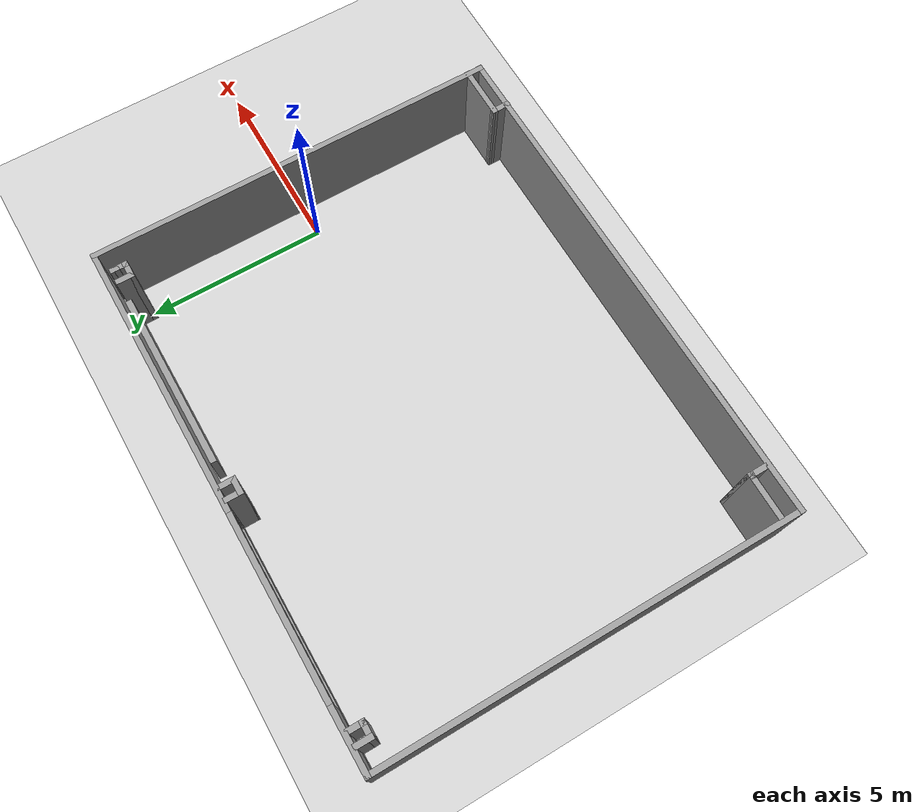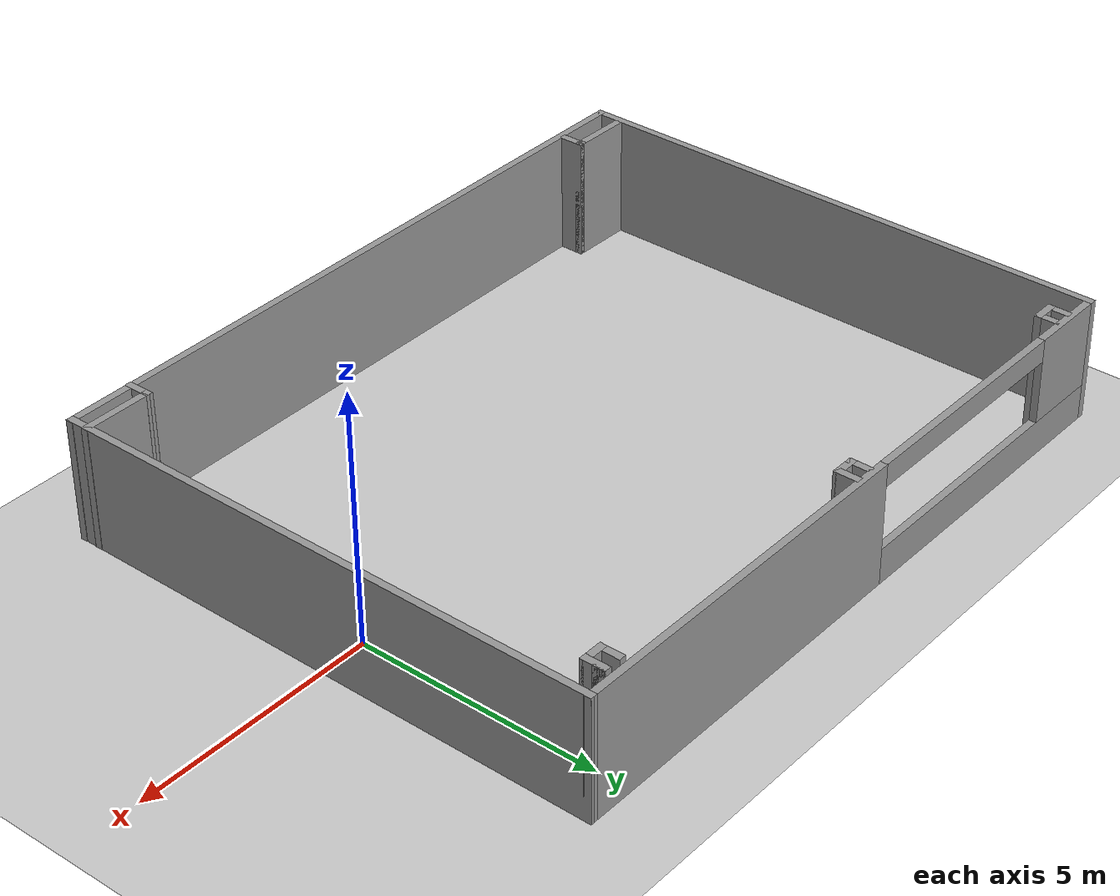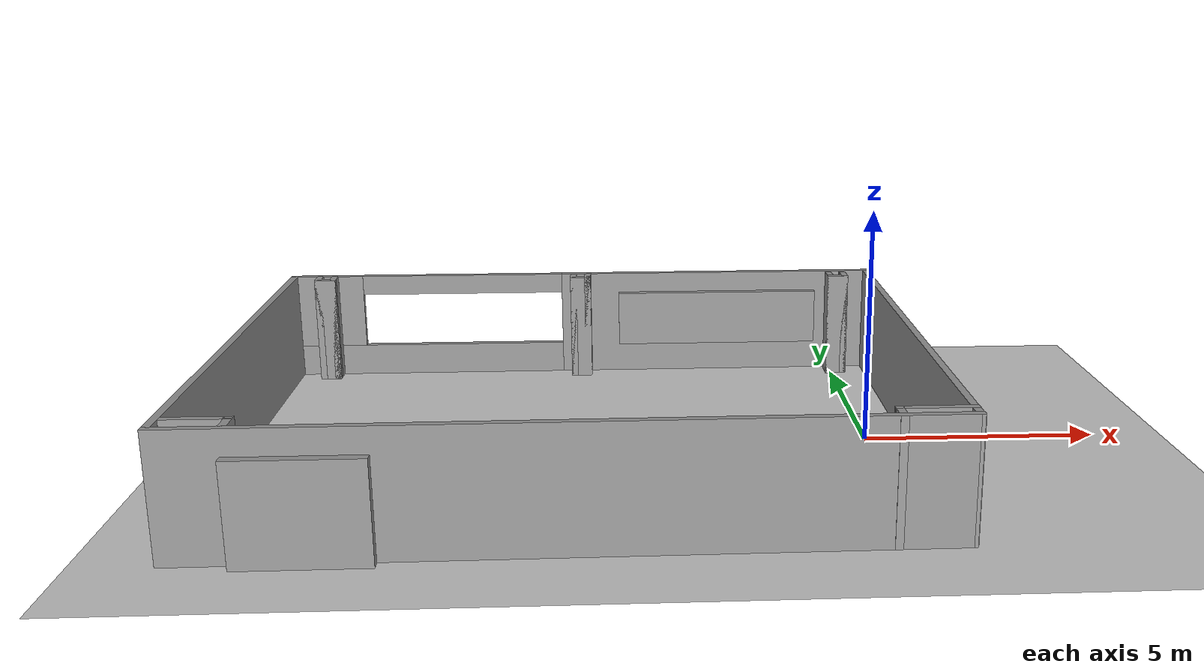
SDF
<sdf version="1.7">
 <world name="default">
  <light name="sun" type="directional">
   <pose>0 0 10 0 -0 0</pose>
   <diffuse>0.8 0.8 0.8 1</diffuse>
   <specular>0.2 0.2 0.2 1</specular>
   <attenuation>
    <range>1000</range>
    <constant>0.9</constant>
    <linear>0.01</linear>
    <quadratic>0.001</quadratic>
   </attenuation>
   <direction>-0.5 0.1 -0.9</direction>
   <spot><inner_angle>0</inner_angle><outer_angle>0</outer_angle><falloff>0</falloff></spot>
  </light>
  <model name="ground_plane">
   <static>1</static>
   <link name="link">
    <collision name="collision">
     <geometry><plane><normal>0 0 1</normal><size>100 100</size></plane></geometry>
     <surface>
      <contact><collide_bitmask>65535</collide_bitmask></contact>
      <friction><ode><mu>100</mu><mu2>50</mu2></ode></friction>
     </surface>
    </collision>
    <visual name="visual">
     <cast_shadows>0</cast_shadows>
     <geometry><plane><normal>0 0 1</normal><size>100 100</size></plane></geometry>
     <material>
      <script><uri>file://media/materials/scripts/gazebo.material</uri><name>Gazebo/Grey</name></script>
     </material>
    </visual>
   </link>
  </model>
  <gravity>0 0 -9.8</gravity>
  <magnetic_field>6e-06 2.3e-05 -4.2e-05</magnetic_field>
  <atmosphere type="adiabatic"/>
  <physics type="ode">
   <max_step_size>0.001</max_step_size>
   <real_time_factor>1</real_time_factor>
   <real_time_update_rate>1000</real_time_update_rate>
  </physics>
  <scene><ambient>0.4 0.4 0.4 1</ambient><background>0.7 0.7 0.7 1</background><shadows>1</shadows></scene>
  <spherical_coordinates>
   <surface_model>EARTH_WGS84</surface_model>
   <latitude_deg>0</latitude_deg>
   <longitude_deg>0</longitude_deg>
   <elevation>0</elevation>
   <heading_deg>0</heading_deg>
  </spherical_coordinates>
  <model name="escenario">
   <pose>-6.18412 -0.080231 0 0 -0 0</pose>
   <link name="Door_0">
    <collision name="Door_0_Collision">
     <geometry><box><size>2.5 0.2 2</size></box></geometry>
     <pose>0 0 1 0 -0 0</pose>
    </collision>
    <visual name="Door_0_Visual">
     <pose>0 0 1 0 -0 0</pose>
     <geometry><box><size>2.5 0.2 2</size></box></geometry>
     <material>
      <script><uri>file://media/materials/scripts/gazebo.material</uri><name>Gazebo/Grey</name></script>
     </material>
    </visual>
    <pose>-4.63318 -5.88632 0 0 -0 0</pose>
   </link>
   <link name="Wall_1">
    <collision name="Wall_1_Collision">
     <geometry><box><size>14.34 0.15 2.5</size></box></geometry>
     <pose>0 0 1.25 0 -0 0</pose>
    </collision>
    <visual name="Wall_1_Visual">
     <pose>0 0 1.25 0 -0 0</pose>
     <geometry><box><size>14.34 0.15 2.5</size></box></geometry>
     <material>
      <script><uri>file://media/materials/scripts/gazebo.material</uri><name>Gazebo/Grey</name></script>
      <ambient>1 1 1 1</ambient>
     </material>
     <meta><layer>0</layer></meta>
    </visual>
    <pose>0.000631 -5.66507 0 0 -0 0.00424</pose>
   </link>
   <link name="Wall_10">
    <collision name="Wall_10_Collision">
     <geometry><box><size>0.171 0.15 2.5</size></box></geometry>
     <pose>0 0 1.25 0 -0 0</pose>
    </collision>
    <visual name="Wall_10_Visual">
     <pose>0 0 1.25 0 -0 0</pose>
     <geometry><box><size>0.171 0.15 2.5</size></box></geometry>
     <material>
      <script><uri>file://media/materials/scripts/gazebo.material</uri><name>Gazebo/Grey</name></script>
      <ambient>1 1 1 1</ambient>
     </material>
     <meta><layer>0</layer></meta>
    </visual>
    <pose>-5.84438 -5.18777 0 0 -0 0</pose>
   </link>
   <link name="Wall_11">
    <collision name="Wall_11_Collision">
     <geometry><box><size>0.15 0.15 2.5</size></box></geometry>
     <pose>0 0 1.25 0 -0 0</pose>
    </collision>
    <visual name="Wall_11_Visual">
     <pose>0 0 1.25 0 -0 0</pose>
     <geometry><box><size>0.15 0.15 2.5</size></box></geometry>
     <material>
      <script><uri>file://media/materials/scripts/gazebo.material</uri><name>Gazebo/Grey</name></script>
      <ambient>1 1 1 1</ambient>
     </material>
     <meta><layer>0</layer></meta>
    </visual>
    <pose>-5.83388 -5.18777 0 0 -0 0</pose>
   </link>
   <link name="Wall_13">
    <collision name="Wall_13_Collision">
     <geometry><box><size>0.54 0.15 2.5</size></box></geometry>
     <pose>0 0 1.25 0 -0 0</pose>
    </collision>
    <visual name="Wall_13_Visual">
     <pose>0 0 1.25 0 -0 0</pose>
     <geometry><box><size>0.54 0.15 2.5</size></box></geometry>
     <material>
      <script><uri>file://media/materials/scripts/gazebo.material</uri><name>Gazebo/Grey</name></script>
      <ambient>1 1 1 1</ambient>
     </material>
     <meta><layer>0</layer></meta>
    </visual>
    <pose>-5.83388 -5.38277 0 0 -0 -1.5708</pose>
   </link>
   <link name="Wall_16">
    <collision name="Wall_16_Collision">
     <geometry><box><size>1.5 0.15 2.5</size></box></geometry>
     <pose>0 0 1.25 0 -0 0</pose>
    </collision>
    <visual name="Wall_16_Visual">
     <pose>0 0 1.25 0 -0 0</pose>
     <geometry><box><size>1.5 0.15 2.5</size></box></geometry>
     <material>
      <script><uri>file://media/materials/scripts/gazebo.material</uri><name>Gazebo/Grey</name></script>
      <ambient>1 1 1 1</ambient>
     </material>
     <meta><layer>0</layer></meta>
    </visual>
    <pose>6.41761 -5.2619 0 0 -0 3.14159</pose>
   </link>
   <link name="Wall_18">
    <collision name="Wall_18_Collision">
     <geometry><box><size>0.54 0.15 2.5</size></box></geometry>
     <pose>0 0 1.25 0 -0 0</pose>
    </collision>
    <visual name="Wall_18_Visual">
     <pose>0 0 1.25 0 -0 0</pose>
     <geometry><box><size>0.54 0.15 2.5</size></box></geometry>
     <material>
      <script><uri>file://media/materials/scripts/gazebo.material</uri><name>Gazebo/Grey</name></script>
      <ambient>1 1 1 1</ambient>
     </material>
     <meta><layer>0</layer></meta>
    </visual>
    <pose>5.74427 -5.45689 0 0 -0 1.57928</pose>
   </link>
   <link name="Wall_2">
    <collision name="Wall_2_Collision">
     <geometry><box><size>11.4804 0.15 2.5</size></box></geometry>
     <pose>0 0 1.25 0 -0 0</pose>
    </collision>
    <visual name="Wall_2_Visual">
     <pose>0 0 1.25 0 -0 0</pose>
     <geometry><box><size>11.4804 0.15 2.5</size></box></geometry>
     <material>
      <script><uri>file://media/materials/scripts/gazebo.material</uri><name>Gazebo/Grey</name></script>
      <ambient>1 1 1 1</ambient>
     </material>
     <meta><layer>0</layer></meta>
    </visual>
    <pose>7.08999 0.030204 0 0 -0 1.57005</pose>
   </link>
   <link name="Wall_20">
    <collision name="Wall_20_Collision">
     <geometry><box><size>0.25 0.15 2.5</size></box></geometry>
     <pose>0 0 1.25 0 -0 0</pose>
    </collision>
    <visual name="Wall_20_Visual">
     <pose>0 0 1.25 0 -0 0</pose>
     <geometry><box><size>0.25 0.15 2.5</size></box></geometry>
     <material>
      <script><uri>file://media/materials/scripts/gazebo.material</uri><name>Gazebo/Grey</name></script>
      <ambient>1 1 1 1</ambient>
     </material>
     <meta><layer>0</layer></meta>
    </visual>
    <pose>6.48028 5.40621 0 0 -0 -1.5708</pose>
   </link>
   <link name="Wall_22">
    <collision name="Wall_22_Collision">
     <geometry><box><size>0.15 0.15 2.5</size></box></geometry>
     <pose>0 0 1.25 0 -0 0</pose>
    </collision>
    <visual name="Wall_22_Visual">
     <pose>0 0 1.25 0 -0 0</pose>
     <geometry><box><size>0.15 0.15 2.5</size></box></geometry>
     <material>
      <script><uri>file://media/materials/scripts/gazebo.material</uri><name>Gazebo/Grey</name></script>
      <ambient>1 1 1 1</ambient>
     </material>
     <meta><layer>0</layer></meta>
    </visual>
    <pose>6.48028 5.45621 0 0 -0 0</pose>
   </link>
   <link name="Wall_24">
    <collision name="Wall_24_Collision">
     <geometry><box><size>0.5 0.15 2.5</size></box></geometry>
     <pose>0 0 1.25 0 -0 0</pose>
    </collision>
    <visual name="Wall_24_Visual">
     <pose>0 0 1.25 0 -0 0</pose>
     <geometry><box><size>0.5 0.15 2.5</size></box></geometry>
     <material>
      <script><uri>file://media/materials/scripts/gazebo.material</uri><name>Gazebo/Grey</name></script>
      <ambient>1 1 1 1</ambient>
     </material>
     <meta><layer>0</layer></meta>
    </visual>
    <pose>6.48028 5.28121 0 0 -0 -1.5708</pose>
   </link>
   <link name="Wall_25">
    <collision name="Wall_25_Collision">
     <geometry><box><size>0.5 0.15 2.5</size></box></geometry>
     <pose>0 0 1.25 0 -0 0</pose>
    </collision>
    <visual name="Wall_25_Visual">
     <pose>0 0 1.25 0 -0 0</pose>
     <geometry><box><size>0.5 0.15 2.5</size></box></geometry>
     <material>
      <script><uri>file://media/materials/scripts/gazebo.material</uri><name>Gazebo/Grey</name></script>
      <ambient>1 1 1 1</ambient>
     </material>
     <meta><layer>0</layer></meta>
    </visual>
    <pose>6.30528 5.10621 0 0 -0 3.14159</pose>
   </link>
   <link name="Wall_26">
    <collision name="Wall_26_Collision">
     <geometry><box><size>0.5 0.15 2.5</size></box></geometry>
     <pose>0 0 1.25 0 -0 0</pose>
    </collision>
    <visual name="Wall_26_Visual">
     <pose>0 0 1.25 0 -0 0</pose>
     <geometry><box><size>0.5 0.15 2.5</size></box></geometry>
     <material>
      <script><uri>file://media/materials/scripts/gazebo.material</uri><name>Gazebo/Grey</name></script>
      <ambient>1 1 1 1</ambient>
     </material>
     <meta><layer>0</layer></meta>
    </visual>
    <pose>6.13028 5.28121 0 0 -0 1.5708</pose>
   </link>
   <link name="Wall_28">
    <collision name="Wall_28_Collision">
     <geometry><box><size>0.5 0.15 2.5</size></box></geometry>
     <pose>0 0 1.25 0 -0 0</pose>
    </collision>
    <visual name="Wall_28_Visual">
     <pose>0 0 1.25 0 -0 0</pose>
     <geometry><box><size>0.5 0.15 2.5</size></box></geometry>
     <material>
      <script><uri>file://media/materials/scripts/gazebo.material</uri><name>Gazebo/Grey</name></script>
      <ambient>1 1 1 1</ambient>
     </material>
     <meta><layer>0</layer></meta>
    </visual>
    <pose>0.112098 5.42388 0 0 -0 -1.5708</pose>
   </link>
   <link name="Wall_29">
    <collision name="Wall_29_Collision">
     <geometry><box><size>0.5 0.15 2.5</size></box></geometry>
     <pose>0 0 1.25 0 -0 0</pose>
    </collision>
    <visual name="Wall_29_Visual">
     <pose>0 0 1.25 0 -0 0</pose>
     <geometry><box><size>0.5 0.15 2.5</size></box></geometry>
     <material>
      <script><uri>file://media/materials/scripts/gazebo.material</uri><name>Gazebo/Grey</name></script>
      <ambient>1 1 1 1</ambient>
     </material>
     <meta><layer>0</layer></meta>
    </visual>
    <pose>-0.062902 5.24888 0 0 -0 3.14159</pose>
   </link>
   <link name="Wall_3">
    <pose>-0.00083 5.69531 0 0 -0 -3.14158</pose>
    <visual name="Wall_3_Visual_0">
     <pose>-3.31623 0 1.25 0 -0 0</pose>
     <geometry><box><size>7.70754 0.15 2.5</size></box></geometry>
     <material>
      <script><uri>file://media/materials/scripts/gazebo.material</uri><name>Gazebo/Grey</name></script>
      <ambient>1 1 1 1</ambient>
     </material>
     <meta><layer>0</layer></meta>
    </visual>
    <collision name="Wall_3_Collision_0">
     <geometry><box><size>7.70754 0.15 2.5</size></box></geometry>
     <pose>-3.31623 0 1.25 0 -0 0</pose>
    </collision>
    <visual name="Wall_3_Visual_1">
     <pose>3.85377 0 0.37 0 -0 0</pose>
     <geometry><box><size>6.63246 0.15 0.74</size></box></geometry>
     <material>
      <script><uri>file://media/materials/scripts/gazebo.material</uri><name>Gazebo/Grey</name></script>
      <ambient>1 1 1 1</ambient>
     </material>
     <meta><layer>0</layer></meta>
    </visual>
    <collision name="Wall_3_Collision_1">
     <geometry><box><size>6.63246 0.15 0.74</size></box></geometry>
     <pose>3.85377 0 0.37 0 -0 0</pose>
    </collision>
    <visual name="Wall_3_Visual_2">
     <pose>6.30377 0 1.62 0 -0 0</pose>
     <geometry><box><size>1.73246 0.15 1.76</size></box></geometry>
     <material>
      <script><uri>file://media/materials/scripts/gazebo.material</uri><name>Gazebo/Grey</name></script>
      <ambient>1 1 1 1</ambient>
     </material>
     <meta><layer>0</layer></meta>
    </visual>
    <collision name="Wall_3_Collision_2">
     <geometry><box><size>1.73246 0.15 1.76</size></box></geometry>
     <pose>6.30377 0 1.62 0 -0 0</pose>
    </collision>
    <visual name="Wall_3_Visual_3">
     <pose>2.98754 0 2.27 0 -0 0</pose>
     <geometry><box><size>4.9 0.15 0.46</size></box></geometry>
     <material>
      <script><uri>file://media/materials/scripts/gazebo.material</uri><name>Gazebo/Grey</name></script>
      <ambient>1 1 1 1</ambient>
     </material>
     <meta><layer>0</layer></meta>
    </visual>
    <collision name="Wall_3_Collision_3">
     <geometry><box><size>4.9 0.15 0.46</size></box></geometry>
     <pose>2.98754 0 2.27 0 -0 0</pose>
    </collision>
   </link>
   <link name="Wall_30">
    <collision name="Wall_30_Collision">
     <geometry><box><size>0.5 0.15 2.5</size></box></geometry>
     <pose>0 0 1.25 0 -0 0</pose>
    </collision>
    <visual name="Wall_30_Visual">
     <pose>0 0 1.25 0 -0 0</pose>
     <geometry><box><size>0.5 0.15 2.5</size></box></geometry>
     <material>
      <script><uri>file://media/materials/scripts/gazebo.material</uri><name>Gazebo/Grey</name></script>
      <ambient>1 1 1 1</ambient>
     </material>
     <meta><layer>0</layer></meta>
    </visual>
    <pose>-0.237903 5.42388 0 0 -0 1.5708</pose>
   </link>
   <link name="Wall_32">
    <collision name="Wall_32_Collision">
     <geometry><box><size>0.5 0.15 2.5</size></box></geometry>
     <pose>0 0 1.25 0 -0 0</pose>
    </collision>
    <visual name="Wall_32_Visual">
     <pose>0 0 1.25 0 -0 0</pose>
     <geometry><box><size>0.5 0.15 2.5</size></box></geometry>
     <material>
      <script><uri>file://media/materials/scripts/gazebo.material</uri><name>Gazebo/Grey</name></script>
      <ambient>1 1 1 1</ambient>
     </material>
     <meta><layer>0</layer></meta>
    </visual>
    <pose>-6.10566 5.42938 0 0 -0 -1.5708</pose>
   </link>
   <link name="Wall_33">
    <collision name="Wall_33_Collision">
     <geometry><box><size>0.5 0.15 2.5</size></box></geometry>
     <pose>0 0 1.25 0 -0 0</pose>
    </collision>
    <visual name="Wall_33_Visual">
     <pose>0 0 1.25 0 -0 0</pose>
     <geometry><box><size>0.5 0.15 2.5</size></box></geometry>
     <material>
      <script><uri>file://media/materials/scripts/gazebo.material</uri><name>Gazebo/Grey</name></script>
      <ambient>1 1 1 1</ambient>
     </material>
     <meta><layer>0</layer></meta>
    </visual>
    <pose>-6.28066 5.25438 0 0 -0 3.14159</pose>
   </link>
   <link name="Wall_34">
    <collision name="Wall_34_Collision">
     <geometry><box><size>0.5 0.15 2.5</size></box></geometry>
     <pose>0 0 1.25 0 -0 0</pose>
    </collision>
    <visual name="Wall_34_Visual">
     <pose>0 0 1.25 0 -0 0</pose>
     <geometry><box><size>0.5 0.15 2.5</size></box></geometry>
     <material>
      <script><uri>file://media/materials/scripts/gazebo.material</uri><name>Gazebo/Grey</name></script>
      <ambient>1 1 1 1</ambient>
     </material>
     <meta><layer>0</layer></meta>
    </visual>
    <pose>-6.45566 5.42938 0 0 -0 1.5708</pose>
   </link>
   <link name="Wall_4">
    <collision name="Wall_4_Collision">
     <geometry><box><size>11.5 0.15 2.5</size></box></geometry>
     <pose>0 0 1.25 0 -0 0</pose>
    </collision>
    <visual name="Wall_4_Visual">
     <pose>0 0 1.25 0 -0 0</pose>
     <geometry><box><size>11.5 0.15 2.5</size></box></geometry>
     <material>
      <script><uri>file://media/materials/scripts/gazebo.material</uri><name>Gazebo/Grey</name></script>
      <ambient>1 1 1 1</ambient>
     </material>
     <meta><layer>0</layer></meta>
    </visual>
    <pose>-7.09588 0.020231 0 0 -0 -1.5708</pose>
   </link>
   <link name="Wall_7">
    <collision name="Wall_7_Collision">
     <geometry><box><size>1.2496 0.15 2.5</size></box></geometry>
     <pose>0 0 1.25 0 -0 0</pose>
    </collision>
    <visual name="Wall_7_Visual">
     <pose>0 0 1.25 0 -0 0</pose>
     <geometry><box><size>1.2496 0.15 2.5</size></box></geometry>
     <material>
      <script><uri>file://media/materials/scripts/gazebo.material</uri><name>Gazebo/Grey</name></script>
      <ambient>1 1 1 1</ambient>
     </material>
     <meta><layer>0</layer></meta>
    </visual>
    <pose>-6.40465 -5.18204 0 0 -0 3.13117</pose>
   </link>
   <link name="Wall_9">
    <collision name="Wall_9_Collision">
     <geometry><box><size>0.171 0.15 2.5</size></box></geometry>
     <pose>0 0 1.25 0 -0 0</pose>
    </collision>
    <visual name="Wall_9_Visual">
     <pose>0 0 1.25 0 -0 0</pose>
     <geometry><box><size>0.171 0.15 2.5</size></box></geometry>
     <material>
      <script><uri>file://media/materials/scripts/gazebo.material</uri><name>Gazebo/Grey</name></script>
      <ambient>1 1 1 1</ambient>
     </material>
     <meta><layer>0</layer></meta>
    </visual>
    <pose>-5.84438 -5.18777 0 0 -0 3.14159</pose>
   </link>
   <link name="Window_0">
    <collision name="Window_0_Collision">
     <geometry><box><size>4.9 0.17 1.3</size></box></geometry>
     <pose>0 0 0.65 0 -0 0</pose>
    </collision>
    <visual name="Window_0_Visual">
     <pose>0 0 0.65 0 -0 0</pose>
     <geometry><box><size>4.9 0.17 1.3</size></box></geometry>
     <material>
      <script><uri>file://media/materials/scripts/gazebo.material</uri><name>Gazebo/Grey</name></script>
     </material>
    </visual>
    <pose>3.32758 5.47339 0.74 0 -0 0</pose>
   </link>
   <static>1</static>
  </model>
 </world>
</sdf>
